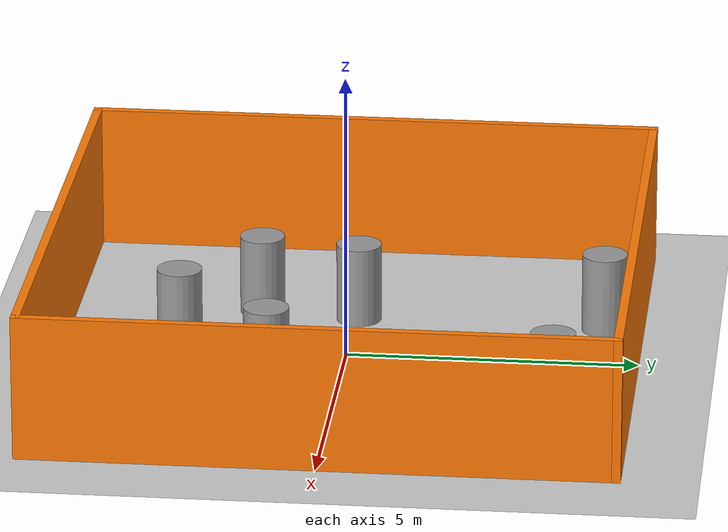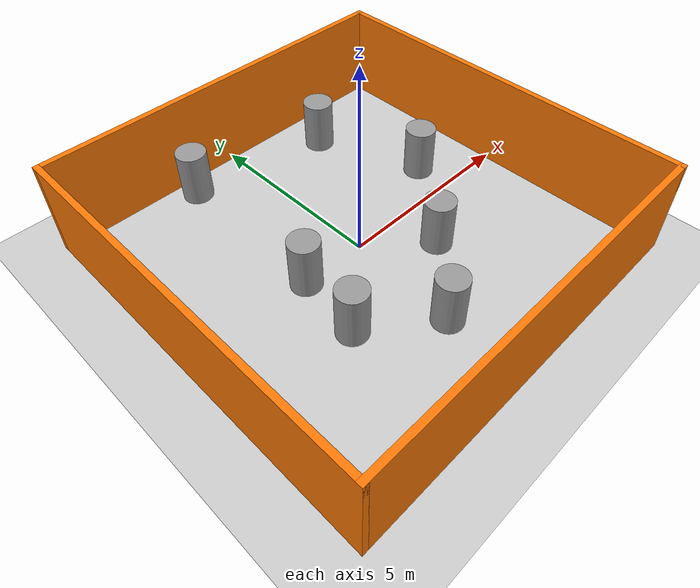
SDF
<sdf version="1.6">
 <world name="default">
  <light name="sun" type="directional">
   <pose>0 0 10 0 -0 0</pose>
   <diffuse>0.8 0.8 0.8 1</diffuse>
   <specular>0.2 0.2 0.2 1</specular>
   <attenuation>
    <range>1000</range>
    <constant>0.9</constant>
    <linear>0.01</linear>
    <quadratic>0.001</quadratic>
   </attenuation>
   <direction>-0.5 0.1 -0.9</direction>
  </light>
  <model name="ground_plane">
   <static>1</static>
   <link name="link">
    <collision name="collision">
     <geometry><plane><normal>0 0 1</normal><size>100 100</size></plane></geometry>
     <surface>
      <contact><collide_bitmask>65535</collide_bitmask></contact>
      <friction><ode><mu>100</mu><mu2>50</mu2></ode></friction>
     </surface>
    </collision>
    <visual name="visual">
     <cast_shadows>0</cast_shadows>
     <geometry><plane><normal>0 0 1</normal><size>100 100</size></plane></geometry>
     <material>
      <script><uri>file://media/materials/scripts/gazebo.material</uri><name>Gazebo/Grey</name></script>
     </material>
    </visual>
   </link>
  </model>
  <gravity>0 0 -90.8</gravity>
  <magnetic_field>6e-06 2.3e-05 -4.2e-05</magnetic_field>
  <atmosphere type="adiabatic"/>
  <physics name="default_physics" default="0" type="ode">
   <max_step_size>0.005</max_step_size>
   <real_time_factor>1</real_time_factor>
   <real_time_update_rate>0000</real_time_update_rate>
  </physics>
  <scene><ambient>0.4 0.4 0.4 1</ambient><background>0.7 0.7 0.7 1</background><shadows>1</shadows></scene>
  <audio><device>default</device></audio>
  <spherical_coordinates>
   <surface_model>EARTH_WGS84</surface_model>
   <latitude_deg>0</latitude_deg>
   <longitude_deg>0</longitude_deg>
   <elevation>0</elevation>
   <heading_deg>0</heading_deg>
  </spherical_coordinates>
  <model name="5x5">
   <pose>0.031242 0.008737 0 0 -0 0</pose>
   <link name="Wall_0">
    <collision name="Wall_0_Collision">
     <geometry><box><size>10 0.15 2.5</size></box></geometry>
     <pose>0 0 1.25 0 -0 0</pose>
    </collision>
    <visual name="Wall_0_Visual">
     <pose>0 0 1.25 0 -0 0</pose>
     <geometry><box><size>10 0.15 2.5</size></box></geometry>
     <material>
      <script><uri>file://media/materials/scripts/gazebo.material</uri><name>Gazebo/Grey</name></script>
      <ambient>0.996078 0.47451 0.0196078 1</ambient>
     </material>
     <meta><layer>0</layer></meta>
    </visual>
    <pose>-0 -4.925 0 0 -0 0</pose>
   </link>
   <link name="Wall_2">
    <collision name="Wall_2_Collision">
     <geometry><box><size>10 0.15 2.5</size></box></geometry>
     <pose>0 0 1.25 0 -0 0</pose>
    </collision>
    <visual name="Wall_2_Visual">
     <pose>0 0 1.25 0 -0 0</pose>
     <geometry><box><size>10 0.15 2.5</size></box></geometry>
     <material>
      <script><uri>file://media/materials/scripts/gazebo.material</uri><name>Gazebo/Grey</name></script>
      <ambient>0.996078 0.47451 0.0196078 1</ambient>
     </material>
     <meta><layer>0</layer></meta>
    </visual>
    <pose>4.925 -0 0 0 -0 1.5708</pose>
   </link>
   <link name="Wall_3">
    <collision name="Wall_3_Collision">
     <geometry><box><size>10 0.15 2.5</size></box></geometry>
     <pose>0 0 1.25 0 -0 0</pose>
    </collision>
    <visual name="Wall_3_Visual">
     <pose>0 0 1.25 0 -0 0</pose>
     <geometry><box><size>10 0.15 2.5</size></box></geometry>
     <material>
      <script><uri>file://media/materials/scripts/gazebo.material</uri><name>Gazebo/Grey</name></script>
      <ambient>0.996078 0.47451 0.0196078 1</ambient>
     </material>
     <meta><layer>0</layer></meta>
    </visual>
    <pose>-0 4.925 0 0 -0 3.14159</pose>
   </link>
   <link name="Wall_4">
    <collision name="Wall_4_Collision">
     <geometry><box><size>10 0.15 2.5</size></box></geometry>
     <pose>0 0 1.25 0 -0 0</pose>
    </collision>
    <visual name="Wall_4_Visual">
     <pose>0 0 1.25 0 -0 0</pose>
     <geometry><box><size>10 0.15 2.5</size></box></geometry>
     <material>
      <script><uri>file://media/materials/scripts/gazebo.material</uri><name>Gazebo/Grey</name></script>
      <ambient>0.996078 0.47451 0.0196078 1</ambient>
     </material>
     <meta><layer>0</layer></meta>
    </visual>
    <pose>-4.925 -0 0 0 -0 -1.5708</pose>
   </link>
   <static>1</static>
  </model>
  <model name="small_box">
   <link name="link_2">
    <inertial>
     <mass>0.838617</mass>
     <inertia>
      <ixx>0.166859</ixx>
      <ixy>0</ixy>
      <ixz>0</ixz>
      <iyy>0.166859</iyy>
      <iyz>0</iyz>
      <izz>0.0631896</izz>
     </inertia>
    </inertial>
    <pose>-3.04965 -1.45633 0.5 0 -0 0</pose>
    <visual name="visual">
     <geometry><cylinder><radius>0.388201</radius><length>1.39123</length></cylinder></geometry>
     <material>
      <lighting>1</lighting>
      <script><uri>file://media/materials/scripts/gazebo.material</uri><name>Gazebo/Grey</name></script>
     </material>
    </visual>
    <collision name="collision">
     <geometry><cylinder><radius>0.388201</radius><length>1.39123</length></cylinder></geometry>
     <surface>
      <friction>
       <ode><mu>1</mu><mu2>1</mu2><fdir1>0 0 0</fdir1><slip1>0</slip1><slip2>0</slip2></ode>
       <torsional>
        <coefficient>1</coefficient>
        <patch_radius>0</patch_radius>
        <surface_radius>0</surface_radius>
        <use_patch_radius>1</use_patch_radius>
        <ode><slip>0</slip></ode>
       </torsional>
      </friction>
      <bounce><restitution_coefficient>0</restitution_coefficient><threshold>1e+06</threshold></bounce>
      <contact>
       <collide_without_contact>0</collide_without_contact>
       <collide_without_contact_bitmask>1</collide_without_contact_bitmask>
       <collide_bitmask>1</collide_bitmask>
       <ode>
        <soft_cfm>0</soft_cfm>
        <soft_erp>0.2</soft_erp>
        <kp>1e+13</kp>
        <kd>1</kd>
        <max_vel>0.01</max_vel>
        <min_depth>0</min_depth>
       </ode>
       <bullet>
        <split_impulse>1</split_impulse>
        <split_impulse_penetration_threshold>-0.01</split_impulse_penetration_threshold>
        <soft_cfm>0</soft_cfm>
        <soft_erp>0.2</soft_erp>
        <kp>1e+13</kp>
        <kd>1</kd>
       </bullet>
      </contact>
     </surface>
    </collision>
   </link>
   <static>0</static>
   <pose>1.39302 1.51364 0.195606 0 -0 0</pose>
  </model>
  <model name="small_box_0">
   <link name="link_2">
    <inertial>
     <mass>0.838617</mass>
     <inertia>
      <ixx>0.166859</ixx>
      <ixy>0</ixy>
      <ixz>0</ixz>
      <iyy>0.166859</iyy>
      <iyz>0</iyz>
      <izz>0.0631896</izz>
     </inertia>
    </inertial>
    <pose>-3.04965 -1.45633 0.5 0 -0 0</pose>
    <visual name="visual">
     <geometry><cylinder><radius>0.388201</radius><length>1.39123</length></cylinder></geometry>
     <material>
      <lighting>1</lighting>
      <script><uri>file://media/materials/scripts/gazebo.material</uri><name>Gazebo/Grey</name></script>
     </material>
    </visual>
    <collision name="collision">
     <geometry><cylinder><radius>0.388201</radius><length>1.39123</length></cylinder></geometry>
     <surface>
      <friction>
       <ode><mu>1</mu><mu2>1</mu2><fdir1>0 0 0</fdir1><slip1>0</slip1><slip2>0</slip2></ode>
       <torsional>
        <coefficient>1</coefficient>
        <patch_radius>0</patch_radius>
        <surface_radius>0</surface_radius>
        <use_patch_radius>1</use_patch_radius>
        <ode><slip>0</slip></ode>
       </torsional>
      </friction>
      <bounce><restitution_coefficient>0</restitution_coefficient><threshold>1e+06</threshold></bounce>
      <contact>
       <collide_without_contact>0</collide_without_contact>
       <collide_without_contact_bitmask>1</collide_without_contact_bitmask>
       <collide_bitmask>1</collide_bitmask>
       <ode>
        <soft_cfm>0</soft_cfm>
        <soft_erp>0.2</soft_erp>
        <kp>1e+13</kp>
        <kd>1</kd>
        <max_vel>0.01</max_vel>
        <min_depth>0</min_depth>
       </ode>
       <bullet>
        <split_impulse>1</split_impulse>
        <split_impulse_penetration_threshold>-0.01</split_impulse_penetration_threshold>
        <soft_cfm>0</soft_cfm>
        <soft_erp>0.2</soft_erp>
        <kp>1e+13</kp>
        <kd>1</kd>
       </bullet>
      </contact>
     </surface>
    </collision>
   </link>
   <static>0</static>
   <pose>1.18019 -0.18607 0.195615 0 -0 0</pose>
  </model>
  <model name="small_box_1">
   <link name="link_2">
    <inertial>
     <mass>0.838617</mass>
     <inertia>
      <ixx>0.166859</ixx>
      <ixy>0</ixy>
      <ixz>0</ixz>
      <iyy>0.166859</iyy>
      <iyz>0</iyz>
      <izz>0.0631896</izz>
     </inertia>
    </inertial>
    <pose>-3.04965 -1.45633 0.5 0 -0 0</pose>
    <visual name="visual">
     <geometry><cylinder><radius>0.388201</radius><length>1.39123</length></cylinder></geometry>
     <material>
      <lighting>1</lighting>
      <script><uri>file://media/materials/scripts/gazebo.material</uri><name>Gazebo/Grey</name></script>
     </material>
    </visual>
    <collision name="collision">
     <geometry><cylinder><radius>0.388201</radius><length>1.39123</length></cylinder></geometry>
     <surface>
      <friction>
       <ode><mu>1</mu><mu2>1</mu2><fdir1>0 0 0</fdir1><slip1>0</slip1><slip2>0</slip2></ode>
       <torsional>
        <coefficient>1</coefficient>
        <patch_radius>0</patch_radius>
        <surface_radius>0</surface_radius>
        <use_patch_radius>1</use_patch_radius>
        <ode><slip>0</slip></ode>
       </torsional>
      </friction>
      <bounce><restitution_coefficient>0</restitution_coefficient><threshold>1e+06</threshold></bounce>
      <contact>
       <collide_without_contact>0</collide_without_contact>
       <collide_without_contact_bitmask>1</collide_without_contact_bitmask>
       <collide_bitmask>1</collide_bitmask>
       <ode>
        <soft_cfm>0</soft_cfm>
        <soft_erp>0.2</soft_erp>
        <kp>1e+13</kp>
        <kd>1</kd>
        <max_vel>0.01</max_vel>
        <min_depth>0</min_depth>
       </ode>
       <bullet>
        <split_impulse>1</split_impulse>
        <split_impulse_penetration_threshold>-0.01</split_impulse_penetration_threshold>
        <soft_cfm>0</soft_cfm>
        <soft_erp>0.2</soft_erp>
        <kp>1e+13</kp>
        <kd>1</kd>
       </bullet>
      </contact>
     </surface>
    </collision>
   </link>
   <static>0</static>
   <pose>6.21358 2.37718 0.195615 0 -0 0</pose>
  </model>
  <model name="small_box_2">
   <link name="link_2">
    <inertial>
     <mass>0.838617</mass>
     <inertia>
      <ixx>0.166859</ixx>
      <ixy>0</ixy>
      <ixz>0</ixz>
      <iyy>0.166859</iyy>
      <iyz>0</iyz>
      <izz>0.0631896</izz>
     </inertia>
    </inertial>
    <pose>-3.04965 -1.45633 0.5 0 -0 0</pose>
    <visual name="visual">
     <geometry><cylinder><radius>0.388201</radius><length>1.39123</length></cylinder></geometry>
     <material>
      <lighting>1</lighting>
      <script><uri>file://media/materials/scripts/gazebo.material</uri><name>Gazebo/Grey</name></script>
     </material>
    </visual>
    <collision name="collision">
     <geometry><cylinder><radius>0.388201</radius><length>1.39123</length></cylinder></geometry>
     <surface>
      <friction>
       <ode><mu>1</mu><mu2>1</mu2><fdir1>0 0 0</fdir1><slip1>0</slip1><slip2>0</slip2></ode>
       <torsional>
        <coefficient>1</coefficient>
        <patch_radius>0</patch_radius>
        <surface_radius>0</surface_radius>
        <use_patch_radius>1</use_patch_radius>
        <ode><slip>0</slip></ode>
       </torsional>
      </friction>
      <bounce><restitution_coefficient>0</restitution_coefficient><threshold>1e+06</threshold></bounce>
      <contact>
       <collide_without_contact>0</collide_without_contact>
       <collide_without_contact_bitmask>1</collide_without_contact_bitmask>
       <collide_bitmask>1</collide_bitmask>
       <ode>
        <soft_cfm>0</soft_cfm>
        <soft_erp>0.2</soft_erp>
        <kp>1e+13</kp>
        <kd>1</kd>
        <max_vel>0.01</max_vel>
        <min_depth>0</min_depth>
       </ode>
       <bullet>
        <split_impulse>1</split_impulse>
        <split_impulse_penetration_threshold>-0.01</split_impulse_penetration_threshold>
        <soft_cfm>0</soft_cfm>
        <soft_erp>0.2</soft_erp>
        <kp>1e+13</kp>
        <kd>1</kd>
       </bullet>
      </contact>
     </surface>
    </collision>
   </link>
   <static>0</static>
   <pose>1.46816 5.76987 0.195615 0 -0 0</pose>
  </model>
  <model name="small_box_3">
   <link name="link_2">
    <inertial>
     <mass>0.838617</mass>
     <inertia>
      <ixx>0.166859</ixx>
      <ixy>0</ixy>
      <ixz>0</ixz>
      <iyy>0.166859</iyy>
      <iyz>0</iyz>
      <izz>0.0631896</izz>
     </inertia>
    </inertial>
    <pose>-3.04965 -1.45633 0.5 0 -0 0</pose>
    <visual name="visual">
     <geometry><cylinder><radius>0.388201</radius><length>1.39123</length></cylinder></geometry>
     <material>
      <lighting>1</lighting>
      <script><uri>file://media/materials/scripts/gazebo.material</uri><name>Gazebo/Grey</name></script>
     </material>
    </visual>
    <collision name="collision">
     <geometry><cylinder><radius>0.388201</radius><length>1.39123</length></cylinder></geometry>
     <surface>
      <friction>
       <ode><mu>1</mu><mu2>1</mu2><fdir1>0 0 0</fdir1><slip1>0</slip1><slip2>0</slip2></ode>
       <torsional>
        <coefficient>1</coefficient>
        <patch_radius>0</patch_radius>
        <surface_radius>0</surface_radius>
        <use_patch_radius>1</use_patch_radius>
        <ode><slip>0</slip></ode>
       </torsional>
      </friction>
      <bounce><restitution_coefficient>0</restitution_coefficient><threshold>1e+06</threshold></bounce>
      <contact>
       <collide_without_contact>0</collide_without_contact>
       <collide_without_contact_bitmask>1</collide_without_contact_bitmask>
       <collide_bitmask>1</collide_bitmask>
       <ode>
        <soft_cfm>0</soft_cfm>
        <soft_erp>0.2</soft_erp>
        <kp>1e+13</kp>
        <kd>1</kd>
        <max_vel>0.01</max_vel>
        <min_depth>0</min_depth>
       </ode>
       <bullet>
        <split_impulse>1</split_impulse>
        <split_impulse_penetration_threshold>-0.01</split_impulse_penetration_threshold>
        <soft_cfm>0</soft_cfm>
        <soft_erp>0.2</soft_erp>
        <kp>1e+13</kp>
        <kd>1</kd>
       </bullet>
      </contact>
     </surface>
    </collision>
   </link>
   <static>0</static>
   <pose>2.85452 -1.42236 0.195606 0 -0 0</pose>
  </model>
  <model name="small_box_4">
   <link name="link_2">
    <inertial>
     <mass>0.838617</mass>
     <inertia>
      <ixx>0.166859</ixx>
      <ixy>0</ixy>
      <ixz>0</ixz>
      <iyy>0.166859</iyy>
      <iyz>0</iyz>
      <izz>0.0631896</izz>
     </inertia>
    </inertial>
    <pose>-3.04965 -1.45633 0.5 0 -0 0</pose>
    <visual name="visual">
     <geometry><cylinder><radius>0.388201</radius><length>1.39123</length></cylinder></geometry>
     <material>
      <lighting>1</lighting>
      <script><uri>file://media/materials/scripts/gazebo.material</uri><name>Gazebo/Grey</name></script>
     </material>
    </visual>
    <collision name="collision">
     <geometry><cylinder><radius>0.388201</radius><length>1.39123</length></cylinder></geometry>
     <surface>
      <friction>
       <ode><mu>1</mu><mu2>1</mu2><fdir1>0 0 0</fdir1><slip1>0</slip1><slip2>0</slip2></ode>
       <torsional>
        <coefficient>1</coefficient>
        <patch_radius>0</patch_radius>
        <surface_radius>0</surface_radius>
        <use_patch_radius>1</use_patch_radius>
        <ode><slip>0</slip></ode>
       </torsional>
      </friction>
      <bounce><restitution_coefficient>0</restitution_coefficient><threshold>1e+06</threshold></bounce>
      <contact>
       <collide_without_contact>0</collide_without_contact>
       <collide_without_contact_bitmask>1</collide_without_contact_bitmask>
       <collide_bitmask>1</collide_bitmask>
       <ode>
        <soft_cfm>0</soft_cfm>
        <soft_erp>0.2</soft_erp>
        <kp>1e+13</kp>
        <kd>1</kd>
        <max_vel>0.01</max_vel>
        <min_depth>0</min_depth>
       </ode>
       <bullet>
        <split_impulse>1</split_impulse>
        <split_impulse_penetration_threshold>-0.01</split_impulse_penetration_threshold>
        <soft_cfm>0</soft_cfm>
        <soft_erp>0.2</soft_erp>
        <kp>1e+13</kp>
        <kd>1</kd>
       </bullet>
      </contact>
     </surface>
    </collision>
   </link>
   <static>0</static>
   <pose>4.45386 0.250023 0.195615 0 -0 0</pose>
  </model>
  <model name="small_box_5">
   <link name="link_2">
    <inertial>
     <mass>0.838617</mass>
     <inertia>
      <ixx>0.166859</ixx>
      <ixy>0</ixy>
      <ixz>0</ixz>
      <iyy>0.166859</iyy>
      <iyz>0</iyz>
      <izz>0.0631896</izz>
     </inertia>
    </inertial>
    <pose>-3.04965 -1.45633 0.5 0 -0 0</pose>
    <visual name="visual">
     <geometry><cylinder><radius>0.388201</radius><length>1.39123</length></cylinder></geometry>
     <material>
      <lighting>1</lighting>
      <script><uri>file://media/materials/scripts/gazebo.material</uri><name>Gazebo/Grey</name></script>
     </material>
    </visual>
    <collision name="collision">
     <geometry><cylinder><radius>0.388201</radius><length>1.39123</length></cylinder></geometry>
     <surface>
      <friction>
       <ode><mu>1</mu><mu2>1</mu2><fdir1>0 0 0</fdir1><slip1>0</slip1><slip2>0</slip2></ode>
       <torsional>
        <coefficient>1</coefficient>
        <patch_radius>0</patch_radius>
        <surface_radius>0</surface_radius>
        <use_patch_radius>1</use_patch_radius>
        <ode><slip>0</slip></ode>
       </torsional>
      </friction>
      <bounce><restitution_coefficient>0</restitution_coefficient><threshold>1e+06</threshold></bounce>
      <contact>
       <collide_without_contact>0</collide_without_contact>
       <collide_without_contact_bitmask>1</collide_without_contact_bitmask>
       <collide_bitmask>1</collide_bitmask>
       <ode>
        <soft_cfm>0</soft_cfm>
        <soft_erp>0.2</soft_erp>
        <kp>1e+13</kp>
        <kd>1</kd>
        <max_vel>0.01</max_vel>
        <min_depth>0</min_depth>
       </ode>
       <bullet>
        <split_impulse>1</split_impulse>
        <split_impulse_penetration_threshold>-0.01</split_impulse_penetration_threshold>
        <soft_cfm>0</soft_cfm>
        <soft_erp>0.2</soft_erp>
        <kp>1e+13</kp>
        <kd>1</kd>
       </bullet>
      </contact>
     </surface>
    </collision>
   </link>
   <static>0</static>
   <pose>5.15038 5.13643 0.195606 0 -0 0</pose>
  </model>
 </world>
</sdf>
